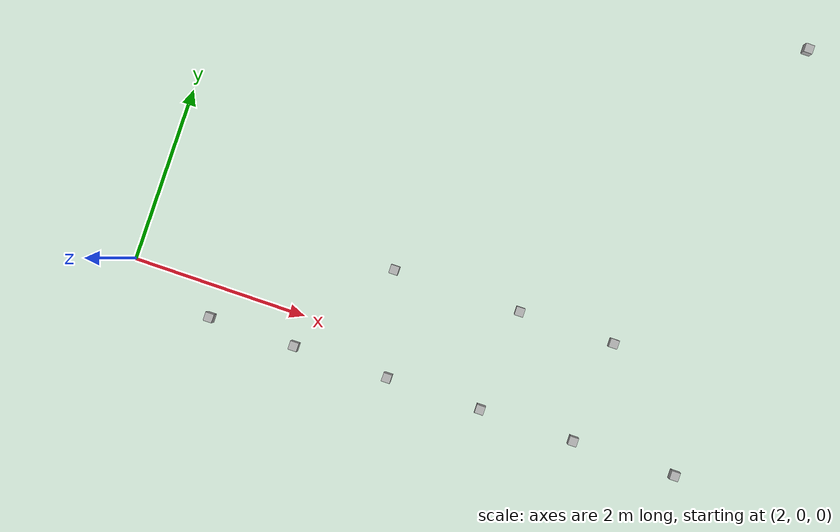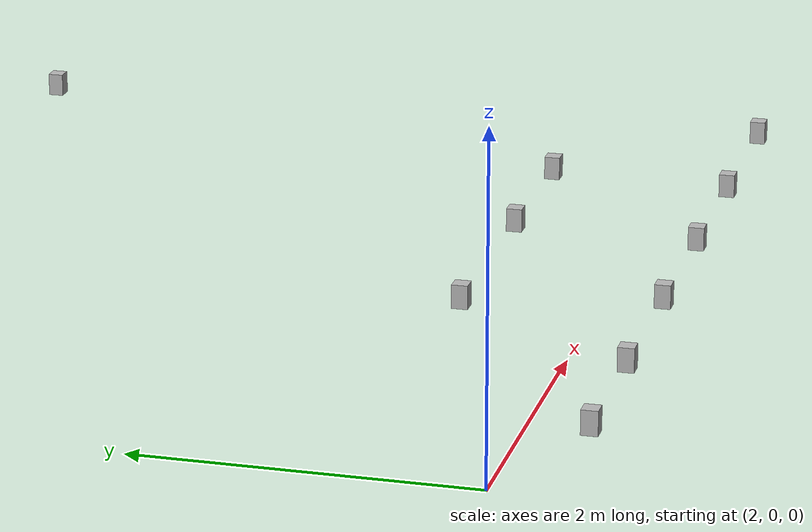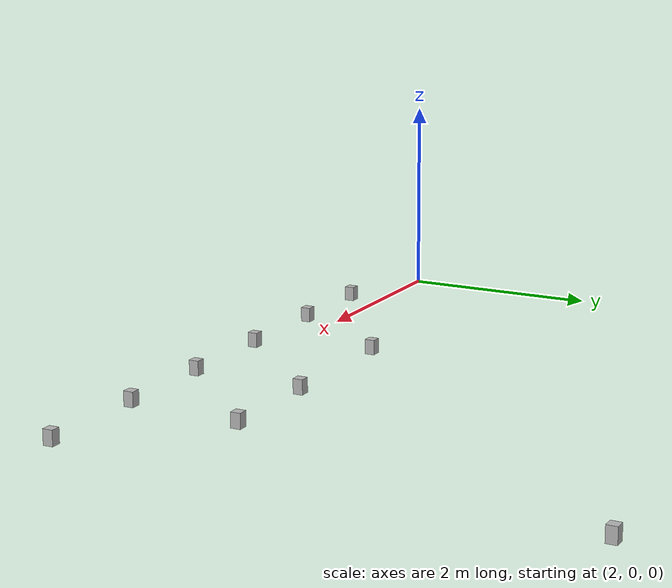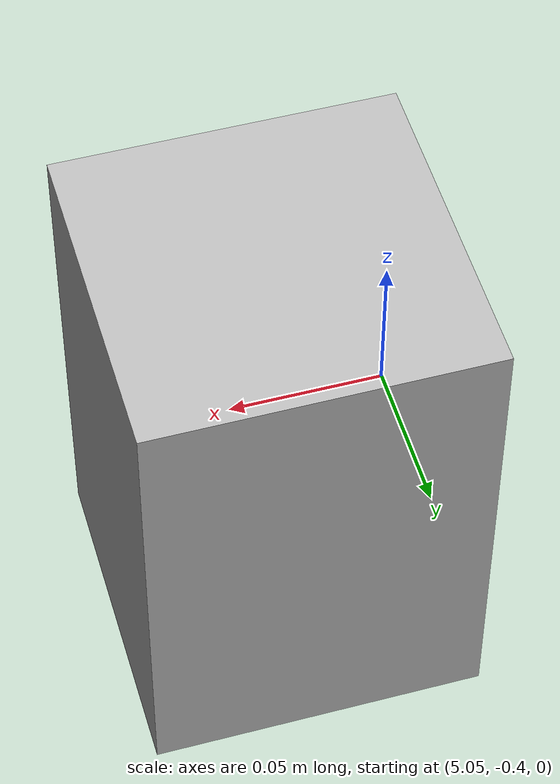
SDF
<sdf version="1.4">
 <world name="carollo_track_v0">
  <include><uri>model://sun</uri><pose>0 0 10 0 0 0</pose><name>sun</name></include>
  <include>
   <uri>model://selfie_description/models/box</uri>
   <name>box1</name>
   <pose>3 -0.35 0.05 0 0 0</pose>
  </include>
  <include>
   <uri>model://selfie_description/models/box</uri>
   <name>box2</name>
   <pose>4 -0.35 0.05 0 0 0</pose>
  </include>
  <include>
   <uri>model://selfie_description/models/box</uri>
   <name>box3</name>
   <pose>5.1 -0.35 0.05 0 0 0</pose>
  </include>
  <include>
   <uri>model://selfie_description/models/box</uri>
   <name>box4</name>
   <pose>6.2 -0.35 0.05 0 0 0</pose>
  </include>
  <include>
   <uri>model://selfie_description/models/box</uri>
   <name>box5</name>
   <pose>7.3 -0.35 0.05 0 0 0</pose>
  </include>
  <include>
   <uri>model://selfie_description/models/box</uri>
   <name>box6</name>
   <pose>8.5 -0.35 0.05 0 0 0</pose>
  </include>
  <include>
   <uri>model://selfie_description/models/box</uri>
   <name>box7</name>
   <pose>7.38 0.83 0.05 0 0 0</pose>
  </include>
  <include>
   <uri>model://selfie_description/models/box</uri>
   <name>box8</name>
   <pose>6.27 0.83 0.05 0 0 0</pose>
  </include>
  <include>
   <uri>model://selfie_description/models/box</uri>
   <name>box9</name>
   <pose>4.79 0.82 0.05 0 0 0</pose>
  </include>
  <include>
   <uri>model://selfie_description/models/box</uri>
   <name>box10</name>
   <pose>8.38 4.65 0.05 0 0 0</pose>
  </include>
 </world>
</sdf>

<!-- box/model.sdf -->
<sdf version="1.4">
<model name="box">
  <pose>0 0 0 0 0 0</pose>
  <static>true</static>
    <link name="link">
      <inertial>
        <mass>1.0</mass>
        <inertia> <!-- inertias are tricky to compute -->
          <!-- http://gazebosim.org/tutorials?tut=inertia&cat=build_robot -->
          <ixx>0.083</ixx>       <!-- for a box: ixx = 0.083 * mass * (y*y + z*z) -->
          <ixy>0.0</ixy>         <!-- for a box: ixy = 0 -->
          <ixz>0.0</ixz>         <!-- for a box: ixz = 0 -->
          <iyy>0.083</iyy>       <!-- for a box: iyy = 0.083 * mass * (x*x + z*z) -->
          <iyz>0.0</iyz>         <!-- for a box: iyz = 0 -->
          <izz>0.083</izz>       <!-- for a box: izz = 0.083 * mass * (x*x + y*y) -->
        </inertia>
      </inertial>
      <collision name="collision">
        <geometry>
          <box>
            <size>0.1 0.1 0.15</size>
          </box>
        </geometry>
      </collision>
      <visual name="visual">
        <material>
          <script>Gazebo/White</script>
        </material>
        <geometry>
          <box>
            <size>0.1 0.1 0.15</size>
          </box>
        </geometry>
      </visual>
    </link>
  </model>
</sdf>
